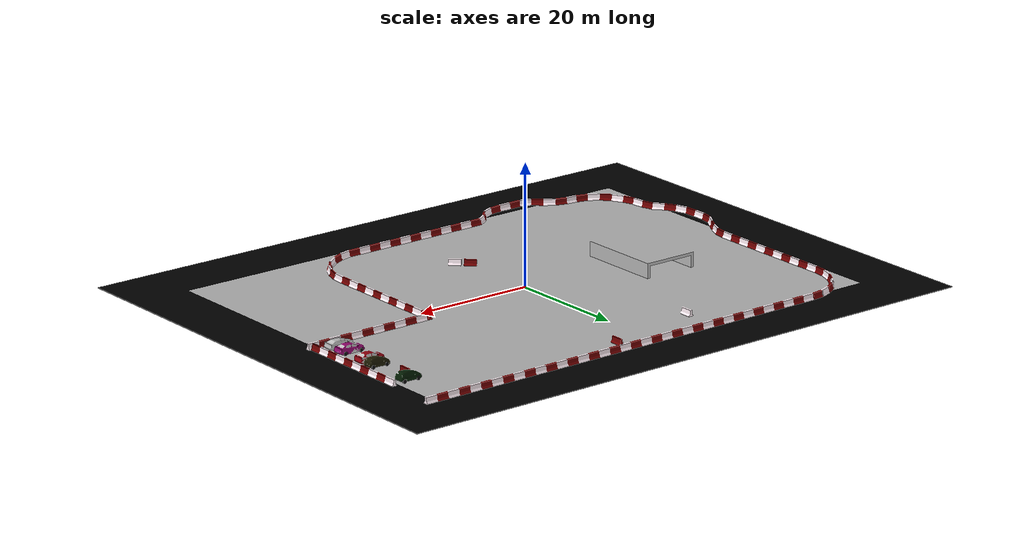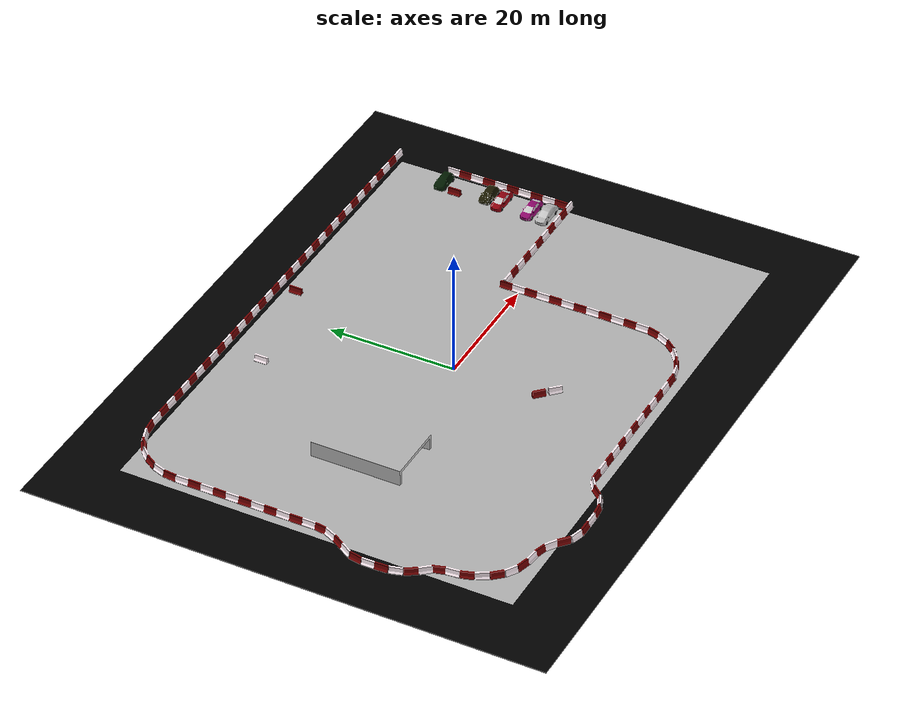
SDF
<?xml version="1.0" ?>
<sdf version="1.6">
  <world name="default">

    <!-- Varsayılan güneş ışığı -->
    <include>
      <uri>model://sun</uri>
    </include>

    <!-- Sis -->
    <fog>
      <color>0.7 0.7 0.8 1</color>
      <linear_dropout>0.01</linear_dropout>
      <linear_start>10</linear_start>
      <linear_end>50</linear_end>
      <type>linear</type>
    </fog>

    <!-- Ortam ışığı -->
    <scene>
      <ambient>0.7 0.7 0.7 1</ambient>  <!-- biraz daha açık, ama nötr -->
      <sky>
        <clouds>
          <speed>12</speed>
        </clouds>
      </sky>
    </scene>

    <scene>
      <ambient>0.5 0.5 1</ambient>
    </scene>

    <light type="directional" name="sun_light">
      <cast_shadows>true</cast_shadows>
      <pose>0 0 10 0 0 0</pose>
      <diffuse>1 1 1 1</diffuse>
      <specular>0.1 0.1 0.1 1</specular>
      <attenuation>
        <range>1000</range>
        <constant>0.9</constant>
        <linear>0.01</linear>
        <quadratic>0.001</quadratic>
      </attenuation>
      <direction>-0.5 0.5 -1</direction>
    </light>

    <!-- Güneş ışığı -->
    <light type="directional" name="custom_sun">
      <cast_shadows>true</cast_shadows>
      <pose>0 0 10 0 0 0</pose>
      <diffuse>1 1 1 1</diffuse>
      <specular>0.1 0.1 0.1 1</specular>
      <attenuation>
        <range>1000</range>
        <constant>0.9</constant>
        <linear>0.01</linear>
        <quadratic>0.001</quadratic>
      </attenuation>
      <direction>-0.5 0.5 -1</direction>
    </light>

    <!-- Harita -->
    <include>
      <uri>model://new_map</uri>
      <pose>0 0 0 0 0 0</pose>
    </include>

  </world>
</sdf>

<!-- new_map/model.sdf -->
<sdf version="1.6">
  <model name="new_map">
    <static>true</static>
    <link name="link">
      <visual name="visual">
        <geometry>
          <mesh>
            <uri>model://new_map/meshes/harita8temmuz.dae</uri>
          </mesh>
        </geometry>
      </visual>
      <collision name="collision">
        <geometry>
          <mesh>
            <uri>model://new_map/meshes/harita8temmuz.dae</uri>
          </mesh>
        </geometry>
      </collision>
    </link>
  </model>
</sdf>
